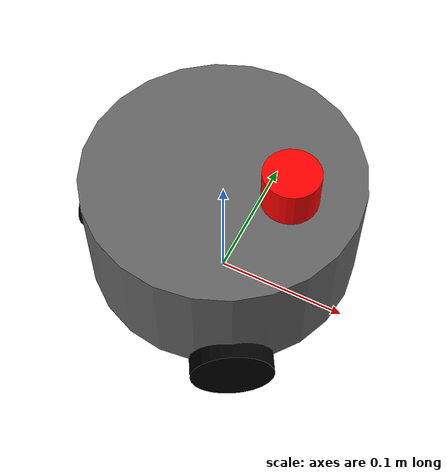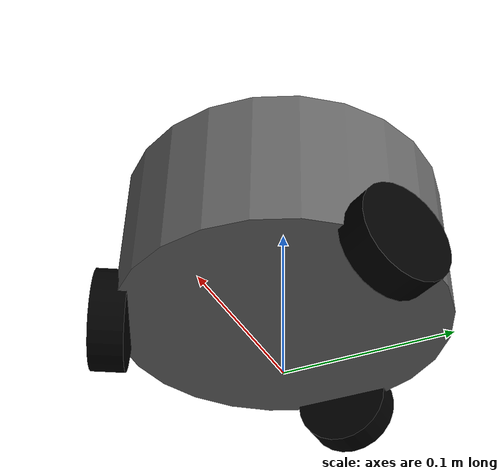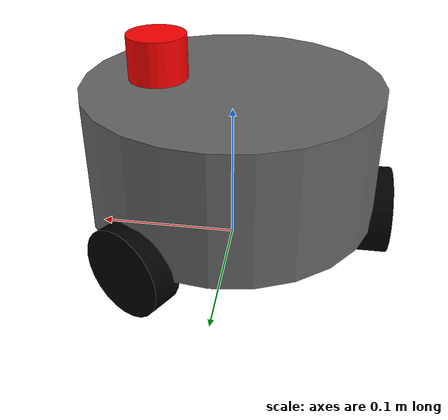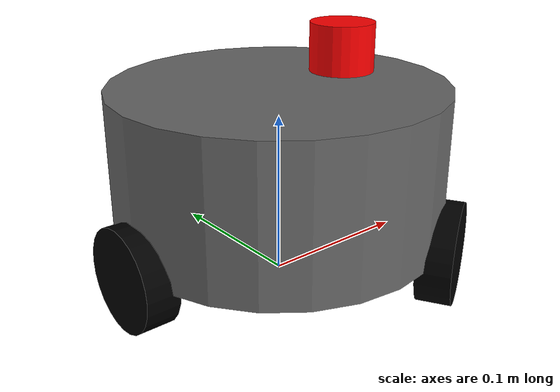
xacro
<?xml version="1.0"?>
<robot xmlns:xacro="http://www.ros.org/wiki/xacro" name="omnibot">

  <xacro:include filename="inertial_macros.xacro"/>

  <xacro:property name="base_radius" value="0.1"/>
  <xacro:property name="base_height" value="0.09"/>
  <xacro:property name="base_mass" value="3.0"/>
  <xacro:property name="wheel_radius" value="0.03"/>
  <xacro:property name="wheel_width" value="0.02"/>
  <xacro:property name="wheel_mass" value="0.1"/>
  <xacro:property name="lidar_radius" value="0.02"/>
  <xacro:property name="lidar_height" value="0.03"/>
  <xacro:property name="lidar_mass" value="0.16"/>

  <material name="white"><color rgba="1 1 1 1" /></material>
  <material name="black"><color rgba="0 0 0 1"/></material>
  <material name="grey"><color rgba="0.4 0.4 0.4 1"/></material>
  <material name="red"><color rgba="1 0 0 1"/></material>
  <material name="green"><color rgba="0 1 0 1"/></material>
  <material name="blue"><color rgba="0.2 0.2 1 1"/></material>

  <link name="base_footprint"/>

  <joint name="base_footprint_joint" type="fixed">
    <parent link="base_footprint"/>
    <child link="base_link"/>
    <origin xyz="0 0 ${base_height/2 + wheel_radius}" rpy="0 0 0"/>
  </joint>

  <link name="base_link">
    <visual>
      <origin xyz="0 0 0"/>
      <geometry><cylinder radius="${base_radius}" length="${base_height}"/></geometry>
      <material name="grey"/>
    </visual>
    <collision>
      <origin xyz="0 0 0"/>
      <geometry><cylinder radius="${base_radius}" length="${base_height}"/></geometry>
    </collision>
    <xacro:inertial_cylinder mass="${base_mass}" length="${base_height}" radius="${base_radius}">
      <origin xyz="0 0 0" rpy="0 0 0"/>
    </xacro:inertial_cylinder>
  </link>

  <xacro:macro name="omni_wheel" params="suffix x y yaw">
    <link name="wheel_${suffix}">
      <visual>
        <origin rpy="1.5708 0 0"/>
        <geometry><cylinder radius="${wheel_radius}" length="${wheel_width}"/></geometry>
        <material name="black"/>
      </visual>
      <collision>
        <origin rpy="1.5708 0 0"/>
        <geometry><cylinder radius="${wheel_radius}" length="${wheel_width}"/></geometry>
      </collision>
      <xacro:inertial_cylinder mass="${wheel_mass}" length="${wheel_width}" radius="${wheel_radius}">
        <origin xyz="0 0 0" rpy="0 0 0"/>
      </xacro:inertial_cylinder>
    </link>

    <joint name="wheel_${suffix}_joint" type="continuous">
      <origin xyz="${x} ${y} ${-base_height/2}" rpy="0 0 ${yaw}"/>
      <parent link="base_link"/><child link="wheel_${suffix}"/>
      <axis xyz="0 1 0"/>
      <dynamics damping="0.0" friction="0.0"/>
    </joint>
  </xacro:macro>

  <xacro:omni_wheel suffix="rear"  x="${-base_radius}"     y="0"                         yaw="-1.5708"/>
  <xacro:omni_wheel suffix="left"  x="${ base_radius*0.5}" y="${ base_radius*0.8660254}" yaw="2.6179939"/>
  <xacro:omni_wheel suffix="right" x="${ base_radius*0.5}" y="${-base_radius*0.8660254}" yaw="0.5235988"/>

  <ros2_control name="omni_system" type="system">
    <hardware>
      <plugin>gz_ros2_control/GazeboSimSystem</plugin>
    </hardware>

    <joint name="wheel_left_joint">
      <command_interface name="velocity"/>
      <state_interface name="position"/>
      <state_interface name="velocity"/>
    </joint>

    <joint name="wheel_right_joint">
      <command_interface name="velocity"/>
      <state_interface name="position"/>
      <state_interface name="velocity"/>
    </joint>

    <joint name="wheel_rear_joint">
      <command_interface name="velocity"/>
      <state_interface name="position"/>
      <state_interface name="velocity"/>
    </joint>
  </ros2_control>

  <gazebo>
    <plugin name="gz_ros2_control::GazeboSimROS2ControlPlugin" filename="libgz_ros2_control-system.so"/>
  </gazebo>

  <joint name="lidar_joint" type="fixed">
    <origin xyz="${base_radius/2} 0 ${(base_height+lidar_height)/2}" rpy="0 0 0"/>
    <parent link="base_link"/>
    <child  link="lidar_link"/>
  </joint>

  <link name="lidar_link">
    <visual>
      <origin xyz="0 0 0" rpy="0 0 0"/>
      <geometry>
        <cylinder length="${lidar_height}" radius="${lidar_radius}"/>
      </geometry>
      <material name="red"/>
    </visual>
    <collision>
      <origin xyz="0 0 0" rpy="0 0 0"/>
      <geometry>
        <cylinder length="${lidar_height}" radius="${lidar_radius}"/>
      </geometry>
    </collision>
    <xacro:inertial_cylinder mass="${lidar_mass}" length="${lidar_height}" radius="${lidar_radius}">
      <origin xyz="0 0 0" rpy="0 0 0"/>
    </xacro:inertial_cylinder>
  </link>
</robot>
